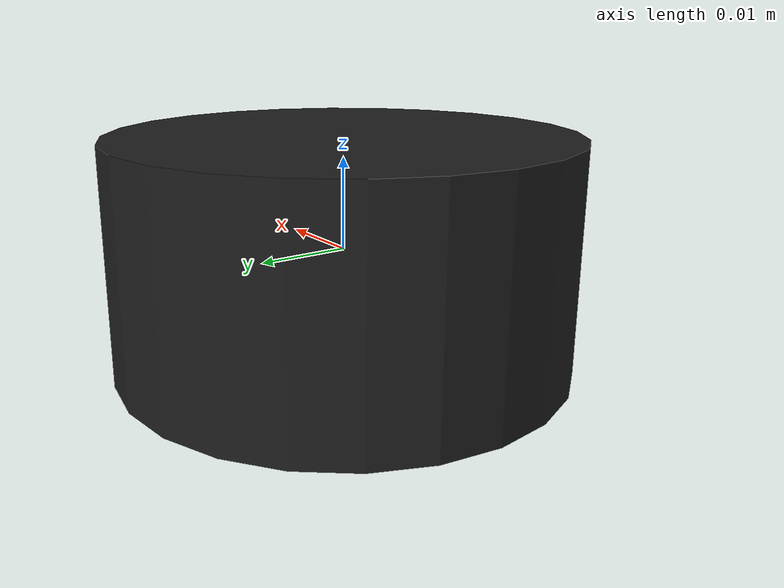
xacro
<?xml version="1.0"?>
<robot xmlns:xacro="http://www.ros.org/wiki/xacro" name="lidar">

    <xacro:macro name="lidar" params="prefix:=laser">
        <!-- Create laser reference frame -->
        <link name="${prefix}_link">
            <inertial>
                <mass value="0.001" />
                <origin xyz="0 0 0" />
                <inertia ixx="0.001" ixy="0.0" ixz="0.0"
                         iyy="0.001" iyz="0.0"
                         izz="0.001" />
            </inertial>

            <visual>
                <origin xyz=" 0 0 0 " rpy="0 0 0" />
                <geometry>
                    <cylinder length="0.025" radius="0.025"/>
                    <!-- cylinder length="0.05" radius="0.05" -->
                </geometry>
                <material name="tire_mat"/>
            </visual>

            <collision>
                <origin xyz="0.0 0.0 0.0" rpy="0 0 0" />
                <geometry>
                    <cylinder length="0.03" radius="0.025"/>
                    <!--cylinder length="0.06" radius="0.05"-->
                </geometry>
            </collision>
        </link>
        <gazebo reference="${prefix}_link">
            <material>Gazebo/Black</material>
        </gazebo>

        <gazebo reference="${prefix}_link">
            <sensor type="ray" name="ls01g">
                <pose>0 0 0 0 0 0</pose>
                <visualize>false</visualize>
                <update_rate>10.0</update_rate>
                <ray>
                    <scan>
                        <horizontal>
                            <samples>360</samples>
                            <resolution>1</resolution>
                            <min_angle>-3.1415926</min_angle>
                            <max_angle>3.1415926</max_angle>
                        </horizontal>
                    </scan>
                    <range>
                        <min>0.10</min>
                        <max>8.0</max>
                        <resolution>0.01</resolution>
                    </range>
                    <noise>
                        <type>gaussian</type>
                        <mean>0.0</mean>
                        <stddev>0.01</stddev>
                    </noise>
                </ray>
                <plugin name="gazebo_ls01g" filename="libgazebo_ros_laser.so">
                    <topicName>scan</topicName>
                    <frameName>laser_link</frameName>
                </plugin>
            </sensor>
        </gazebo>

    </xacro:macro>
    <xacro:lidar prefix="laser"/>

</robot>
